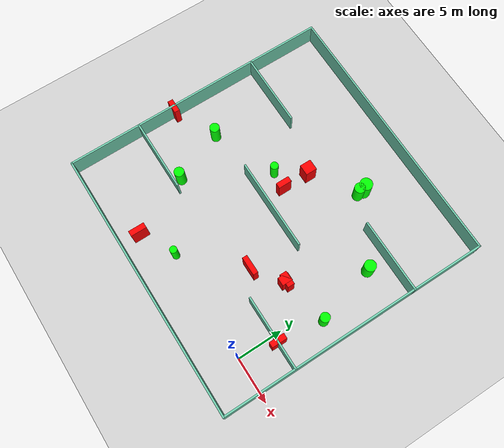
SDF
<sdf version="1.7">
 <world name="default">
  <light name="sun" type="directional">
   <pose>0 0 10 0 -0 0</pose>
   <diffuse>0.8 0.8 0.8 1</diffuse>
   <specular>0.2 0.2 0.2 1</specular>
   <attenuation>
    <range>1000</range>
    <constant>0.9</constant>
    <linear>0.01</linear>
    <quadratic>0.001</quadratic>
   </attenuation>
   <direction>-0.5 0.1 -0.9</direction>
   <spot><inner_angle>0</inner_angle><outer_angle>0</outer_angle><falloff>0</falloff></spot>
  </light>
  <model name="ground_plane">
   <static>1</static>
   <link name="link">
    <collision name="collision">
     <geometry><plane><normal>0 0 1</normal><size>100 100</size></plane></geometry>
     <surface>
      <contact><collide_bitmask>65535</collide_bitmask></contact>
      <friction><ode><mu>100</mu><mu2>50</mu2></ode></friction>
     </surface>
    </collision>
    <visual name="visual">
     <cast_shadows>0</cast_shadows>
     <geometry><plane><normal>0 0 1</normal><size>100 100</size></plane></geometry>
     <material>
      <script><uri>file://media/materials/scripts/gazebo.material</uri><name>Gazebo/Grey</name></script>
     </material>
    </visual>
   </link>
  </model>
  <gravity>0 0 -9.8</gravity>
  <magnetic_field>6e-06 2.3e-05 -4.2e-05</magnetic_field>
  <atmosphere type="adiabatic"/>
  <physics type="ode">
   <max_step_size>0.001</max_step_size>
   <real_time_factor>1</real_time_factor>
   <real_time_update_rate>1000</real_time_update_rate>
  </physics>
  <scene><ambient>0.4 0.4 0.4 1</ambient><background>0.7 0.7 0.7 1</background><shadows>1</shadows></scene>
  <spherical_coordinates>
   <surface_model>EARTH_WGS84</surface_model>
   <latitude_deg>0</latitude_deg>
   <longitude_deg>0</longitude_deg>
   <elevation>0</elevation>
   <heading_deg>0</heading_deg>
  </spherical_coordinates>
  <model name="my_base_walls">
   <link name="Wall_10">
    <collision name="Wall_10_Collision">
     <geometry><box><size>8.2 0.2 2.5</size></box></geometry>
     <pose>0 0 1.25 0 -0 0</pose>
    </collision>
    <visual name="Wall_10_Visual">
     <pose>0 0 1.25 0 -0 0</pose>
     <geometry><box><size>8.2 0.2 2.5</size></box></geometry>
     <material>
      <script><uri>file://media/materials/scripts/gazebo.material</uri><name>Gazebo/Grey</name></script>
      <ambient>0.435294 0.796078 0.67451 1</ambient>
     </material>
     <meta><layer>0</layer></meta>
    </visual>
    <pose>-11 -7 0 0 -0 0</pose>
   </link>
   <link name="Wall_12">
    <collision name="Wall_12_Collision">
     <geometry><box><size>8.2 0.2 2.5</size></box></geometry>
     <pose>0 0 1.25 0 -0 0</pose>
    </collision>
    <visual name="Wall_12_Visual">
     <pose>0 0 1.25 0 -0 0</pose>
     <geometry><box><size>8.2 0.2 2.5</size></box></geometry>
     <material>
      <script><uri>file://media/materials/scripts/gazebo.material</uri><name>Gazebo/Grey</name></script>
      <ambient>0.435294 0.796078 0.67451 1</ambient>
     </material>
     <meta><layer>0</layer></meta>
    </visual>
    <pose>-11 7 0 0 -0 0</pose>
   </link>
   <link name="Wall_14">
    <collision name="Wall_14_Collision">
     <geometry><box><size>8.2 0.2 2.5</size></box></geometry>
     <pose>0 0 1.25 0 -0 0</pose>
    </collision>
    <visual name="Wall_14_Visual">
     <pose>0 0 1.25 0 -0 0</pose>
     <geometry><box><size>8.2 0.2 2.5</size></box></geometry>
     <material>
      <script><uri>file://media/materials/scripts/gazebo.material</uri><name>Gazebo/Grey</name></script>
      <ambient>0.435294 0.796078 0.67451 1</ambient>
     </material>
     <meta><layer>0</layer></meta>
    </visual>
    <pose>11 7 0 0 -0 3.14159</pose>
   </link>
   <link name="Wall_16">
    <collision name="Wall_16_Collision">
     <geometry><box><size>10.2 0.2 2.5</size></box></geometry>
     <pose>0 0 1.25 0 -0 0</pose>
    </collision>
    <visual name="Wall_16_Visual">
     <pose>0 0 1.25 0 -0 0</pose>
     <geometry><box><size>10.2 0.2 2.5</size></box></geometry>
     <material>
      <script><uri>file://media/materials/scripts/gazebo.material</uri><name>Gazebo/Grey</name></script>
      <ambient>0.435294 0.796078 0.67451 1</ambient>
     </material>
     <meta><layer>0</layer></meta>
    </visual>
    <pose>0 0 0 0 -0 3.14159</pose>
   </link>
   <link name="Wall_2">
    <collision name="Wall_2_Collision">
     <geometry><box><size>30.2 0.2 2.5</size></box></geometry>
     <pose>0 0 1.25 0 -0 0</pose>
    </collision>
    <visual name="Wall_2_Visual">
     <pose>0 0 1.25 0 -0 0</pose>
     <geometry><box><size>30.2 0.2 2.5</size></box></geometry>
     <material>
      <script><uri>file://media/materials/scripts/gazebo.material</uri><name>Gazebo/Grey</name></script>
      <ambient>0.435294 0.796078 0.67451 1</ambient>
     </material>
     <meta><layer>0</layer></meta>
    </visual>
    <pose>0 -15 0 0 -0 3.14159</pose>
   </link>
   <link name="Wall_3">
    <collision name="Wall_3_Collision">
     <geometry><box><size>30.2 0.2 2.5</size></box></geometry>
     <pose>0 0 1.25 0 -0 0</pose>
    </collision>
    <visual name="Wall_3_Visual">
     <pose>0 0 1.25 0 -0 0</pose>
     <geometry><box><size>30.2 0.2 2.5</size></box></geometry>
     <material>
      <script><uri>file://media/materials/scripts/gazebo.material</uri><name>Gazebo/Grey</name></script>
      <ambient>0.435294 0.796078 0.67451 1</ambient>
     </material>
     <meta><layer>0</layer></meta>
    </visual>
    <pose>-15 0 0 0 -0 1.5708</pose>
   </link>
   <link name="Wall_4">
    <collision name="Wall_4_Collision">
     <geometry><box><size>30.2 0.2 2.5</size></box></geometry>
     <pose>0 0 1.25 0 -0 0</pose>
    </collision>
    <visual name="Wall_4_Visual">
     <pose>0 0 1.25 0 -0 0</pose>
     <geometry><box><size>30.2 0.2 2.5</size></box></geometry>
     <material>
      <script><uri>file://media/materials/scripts/gazebo.material</uri><name>Gazebo/Grey</name></script>
      <ambient>0.435294 0.796078 0.67451 1</ambient>
     </material>
     <meta><layer>0</layer></meta>
    </visual>
    <pose>0 15 0 0 -0 0</pose>
   </link>
   <link name="Wall_6">
    <collision name="Wall_6_Collision">
     <geometry><box><size>30.2 0.2 2.5</size></box></geometry>
     <pose>0 0 1.25 0 -0 0</pose>
    </collision>
    <visual name="Wall_6_Visual">
     <pose>0 0 1.25 0 -0 0</pose>
     <geometry><box><size>30.2 0.2 2.5</size></box></geometry>
     <material>
      <script><uri>file://media/materials/scripts/gazebo.material</uri><name>Gazebo/Grey</name></script>
      <ambient>0.435294 0.796078 0.67451 1</ambient>
     </material>
     <meta><layer>0</layer></meta>
    </visual>
    <pose>15 0 0 0 -0 1.5708</pose>
   </link>
   <link name="Wall_8">
    <collision name="Wall_8_Collision">
     <geometry><box><size>8.2 0.2 2.5</size></box></geometry>
     <pose>0 0 1.25 0 -0 0</pose>
    </collision>
    <visual name="Wall_8_Visual">
     <pose>0 0 1.25 0 -0 0</pose>
     <geometry><box><size>8.2 0.2 2.5</size></box></geometry>
     <material>
      <script><uri>file://media/materials/scripts/gazebo.material</uri><name>Gazebo/Grey</name></script>
      <ambient>0.435294 0.796078 0.67451 1</ambient>
     </material>
     <meta><layer>0</layer></meta>
    </visual>
    <pose>11 -7 0 0 -0 3.14159</pose>
   </link>
   <static>1</static>
   <pose>-11 11 0 0 -0 0</pose>
  </model>
  <model name="cylinder1">
   <static>1</static>
   <link name="link">
    <inertial>
     <mass>1</mass>
     <inertia><ixx>0.5</ixx><ixy>0</ixy><ixz>0</ixz><iyy>0.5</iyy><iyz>0</iyz><izz>1</izz></inertia>
    </inertial>
    <collision name="collision">
     <geometry><cylinder><radius>0.6307962449873595</radius><length>2.5</length></cylinder></geometry>
    </collision>
    <visual name="visual">
     <geometry><cylinder><radius>0.6307962449873595</radius><length>2.5</length></cylinder></geometry>
     <material>
      <ambient>0 1 0 1</ambient>
      <diffuse>0 1 0 1</diffuse>
      <specular>0.1 0.1 0.1 1</specular>
      <emissive>0 0 0 0</emissive>
     </material>
    </visual>
   </link>
   <pose>-0.2795666545069899 15.689860508418917 1.25 0 0 0</pose>
  </model>
  <model name="cylinder2">
   <static>1</static>
   <link name="link">
    <inertial>
     <mass>1</mass>
     <inertia><ixx>0.5</ixx><ixy>0</ixy><ixz>0</ixz><iyy>0.5</iyy><iyz>0</iyz><izz>1</izz></inertia>
    </inertial>
    <collision name="collision">
     <geometry><cylinder><radius>0.42486859493810575</radius><length>2.5</length></cylinder></geometry>
    </collision>
    <visual name="visual">
     <geometry><cylinder><radius>0.42486859493810575</radius><length>2.5</length></cylinder></geometry>
     <material>
      <ambient>0 1 0 1</ambient>
      <diffuse>0 1 0 1</diffuse>
      <specular>0.1 0.1 0.1 1</specular>
      <emissive>0 0 0 0</emissive>
     </material>
    </visual>
   </link>
   <pose>-14.349908849653117 13.527104892940773 1.25 0 0 0</pose>
  </model>
  <model name="cylinder3">
   <static>1</static>
   <link name="link">
    <inertial>
     <mass>1</mass>
     <inertia><ixx>0.5</ixx><ixy>0</ixy><ixz>0</ixz><iyy>0.5</iyy><iyz>0</iyz><izz>1</izz></inertia>
    </inertial>
    <collision name="collision">
     <geometry><cylinder><radius>0.6945612942952584</radius><length>2.5</length></cylinder></geometry>
    </collision>
    <visual name="visual">
     <geometry><cylinder><radius>0.6945612942952584</radius><length>2.5</length></cylinder></geometry>
     <material>
      <ambient>0 1 0 1</ambient>
      <diffuse>0 1 0 1</diffuse>
      <specular>0.1 0.1 0.1 1</specular>
      <emissive>0 0 0 0</emissive>
     </material>
    </visual>
   </link>
   <pose>-7.497953665345452 20.33407282057919 1.25 0 0 0</pose>
  </model>
  <model name="cylinder4">
   <static>1</static>
   <link name="link">
    <inertial>
     <mass>1</mass>
     <inertia><ixx>0.5</ixx><ixy>0</ixy><ixz>0</ixz><iyy>0.5</iyy><iyz>0</iyz><izz>1</izz></inertia>
    </inertial>
    <collision name="collision">
     <geometry><cylinder><radius>0.53246487797308</radius><length>2.5</length></cylinder></geometry>
    </collision>
    <visual name="visual">
     <geometry><cylinder><radius>0.53246487797308</radius><length>2.5</length></cylinder></geometry>
     <material>
      <ambient>0 1 0 1</ambient>
      <diffuse>0 1 0 1</diffuse>
      <specular>0.1 0.1 0.1 1</specular>
      <emissive>0 0 0 0</emissive>
     </material>
    </visual>
   </link>
   <pose>-21.415871497687498 10.567794295885346 1.25 0 0 0</pose>
  </model>
  <model name="cylinder5">
   <static>1</static>
   <link name="link">
    <inertial>
     <mass>1</mass>
     <inertia><ixx>0.5</ixx><ixy>0</ixy><ixz>0</ixz><iyy>0.5</iyy><iyz>0</iyz><izz>1</izz></inertia>
    </inertial>
    <collision name="collision">
     <geometry><cylinder><radius>0.5449095314704763</radius><length>2.5</length></cylinder></geometry>
    </collision>
    <visual name="visual">
     <geometry><cylinder><radius>0.5449095314704763</radius><length>2.5</length></cylinder></geometry>
     <material>
      <ambient>0 1 0 1</ambient>
      <diffuse>0 1 0 1</diffuse>
      <specular>0.1 0.1 0.1 1</specular>
      <emissive>0 0 0 0</emissive>
     </material>
    </visual>
   </link>
   <pose>-19.130167697950824 4.875595749983599 1.25 0 0 0</pose>
  </model>
  <model name="cylinder6">
   <static>1</static>
   <link name="link">
    <inertial>
     <mass>1</mass>
     <inertia><ixx>0.5</ixx><ixy>0</ixy><ixz>0</ixz><iyy>0.5</iyy><iyz>0</iyz><izz>1</izz></inertia>
    </inertial>
    <collision name="collision">
     <geometry><cylinder><radius>0.39052225544250535</radius><length>2.5</length></cylinder></geometry>
    </collision>
    <visual name="visual">
     <geometry><cylinder><radius>0.39052225544250535</radius><length>2.5</length></cylinder></geometry>
     <material>
      <ambient>0 1 0 1</ambient>
      <diffuse>0 1 0 1</diffuse>
      <specular>0.1 0.1 0.1 1</specular>
      <emissive>0 0 0 0</emissive>
     </material>
    </visual>
   </link>
   <pose>-12.2845472063273 0.18483672919666594 1.25 0 0 0</pose>
  </model>
  <model name="cylinder7">
   <static>1</static>
   <link name="link">
    <inertial>
     <mass>1</mass>
     <inertia><ixx>0.5</ixx><ixy>0</ixy><ixz>0</ixz><iyy>0.5</iyy><iyz>0</iyz><izz>1</izz></inertia>
    </inertial>
    <collision name="collision">
     <geometry><cylinder><radius>0.5783427441170936</radius><length>2.5</length></cylinder></geometry>
    </collision>
    <visual name="visual">
     <geometry><cylinder><radius>0.5783427441170936</radius><length>2.5</length></cylinder></geometry>
     <material>
      <ambient>0 1 0 1</ambient>
      <diffuse>0 1 0 1</diffuse>
      <specular>0.1 0.1 0.1 1</specular>
      <emissive>0 0 0 0</emissive>
     </material>
    </visual>
   </link>
   <pose>-7.505478410985871 19.56374126416251 1.25 0 0 0</pose>
  </model>
  <model name="cylinder8">
   <static>1</static>
   <link name="link">
    <inertial>
     <mass>1</mass>
     <inertia><ixx>0.5</ixx><ixy>0</ixy><ixz>0</ixz><iyy>0.5</iyy><iyz>0</iyz><izz>1</izz></inertia>
    </inertial>
    <collision name="collision">
     <geometry><cylinder><radius>0.5214481239899752</radius><length>2.5</length></cylinder></geometry>
    </collision>
    <visual name="visual">
     <geometry><cylinder><radius>0.5214481239899752</radius><length>2.5</length></cylinder></geometry>
     <material>
      <ambient>0 1 0 1</ambient>
      <diffuse>0 1 0 1</diffuse>
      <specular>0.1 0.1 0.1 1</specular>
      <emissive>0 0 0 0</emissive>
     </material>
    </visual>
   </link>
   <pose>1.5112688937204837 9.066980308182579 1.25 0 0 0</pose>
  </model>
  <model name="box1">
   <static>1</static>
   <link name="link">
    <inertial>
     <mass>1</mass>
     <inertia><ixx>0.083</ixx><ixy>0</ixy><ixz>0</ixz><iyy>0.083</iyy><iyz>0</iyz><izz>0.083</izz></inertia>
    </inertial>
    <collision name="collision">
     <geometry><box><size>0.6047199822364064 1.676999834457076 2.5</size></box></geometry>
    </collision>
    <visual name="visual">
     <geometry><box><size>0.6047199822364064 1.676999834457076 2.5</size></box></geometry>
     <material>
      <ambient>1 0 0 1</ambient>
      <diffuse>1 0 0 1</diffuse>
      <specular>0.1 0.1 0.1 1</specular>
      <emissive>0 0 0 0</emissive>
     </material>
    </visual>
    <sensor name="my_contact" type="contact">
     <contact><collision>box_collision</collision><topic>__default_topic__</topic></contact>
    </sensor>
   </link>
   <pose>0.8842487395066136 4.056505303693732 1.25 0 0 0</pose>
  </model>
  <model name="box2">
   <static>1</static>
   <link name="link">
    <inertial>
     <mass>1</mass>
     <inertia><ixx>0.083</ixx><ixy>0</ixy><ixz>0</ixz><iyy>0.083</iyy><iyz>0</iyz><izz>0.083</izz></inertia>
    </inertial>
    <collision name="collision">
     <geometry><box><size>1.5035423176928273 0.7490071152722453 2.5</size></box></geometry>
    </collision>
    <visual name="visual">
     <geometry><box><size>1.5035423176928273 0.7490071152722453 2.5</size></box></geometry>
     <material>
      <ambient>1 0 0 1</ambient>
      <diffuse>1 0 0 1</diffuse>
      <specular>0.1 0.1 0.1 1</specular>
      <emissive>0 0 0 0</emissive>
     </material>
    </visual>
    <sensor name="my_contact" type="contact">
     <contact><collision>box_collision</collision><topic>__default_topic__</topic></contact>
    </sensor>
   </link>
   <pose>-3.6083474279812116 8.039935172331429 1.25 0 0 0</pose>
  </model>
  <model name="box3">
   <static>1</static>
   <link name="link">
    <inertial>
     <mass>1</mass>
     <inertia><ixx>0.083</ixx><ixy>0</ixy><ixz>0</ixz><iyy>0.083</iyy><iyz>0</iyz><izz>0.083</izz></inertia>
    </inertial>
    <collision name="collision">
     <geometry><box><size>1.1968049777502543 1.241581880311651 2.5</size></box></geometry>
    </collision>
    <visual name="visual">
     <geometry><box><size>1.1968049777502543 1.241581880311651 2.5</size></box></geometry>
     <material>
      <ambient>1 0 0 1</ambient>
      <diffuse>1 0 0 1</diffuse>
      <specular>0.1 0.1 0.1 1</specular>
      <emissive>0 0 0 0</emissive>
     </material>
    </visual>
    <sensor name="my_contact" type="contact">
     <contact><collision>box_collision</collision><topic>__default_topic__</topic></contact>
    </sensor>
   </link>
   <pose>-12.272938455529074 16.376841675525576 1.25 0 0 0</pose>
  </model>
  <model name="box4">
   <static>1</static>
   <link name="link">
    <inertial>
     <mass>1</mass>
     <inertia><ixx>0.083</ixx><ixy>0</ixy><ixz>0</ixz><iyy>0.083</iyy><iyz>0</iyz><izz>0.083</izz></inertia>
    </inertial>
    <collision name="collision">
     <geometry><box><size>1.4847889134585055 0.5881454836198331 2.5</size></box></geometry>
    </collision>
    <visual name="visual">
     <geometry><box><size>1.4847889134585055 0.5881454836198331 2.5</size></box></geometry>
     <material>
      <ambient>1 0 0 1</ambient>
      <diffuse>1 0 0 1</diffuse>
      <specular>0.1 0.1 0.1 1</specular>
      <emissive>0 0 0 0</emissive>
     </material>
    </visual>
    <sensor name="my_contact" type="contact">
     <contact><collision>box_collision</collision><topic>__default_topic__</topic></contact>
    </sensor>
   </link>
   <pose>-25.957916941486456 8.21978787454276 1.25 0 0 0</pose>
  </model>
  <model name="box5">
   <static>1</static>
   <link name="link">
    <inertial>
     <mass>1</mass>
     <inertia><ixx>0.083</ixx><ixy>0</ixy><ixz>0</ixz><iyy>0.083</iyy><iyz>0</iyz><izz>0.083</izz></inertia>
    </inertial>
    <collision name="collision">
     <geometry><box><size>0.9068499414349036 1.1416175898569554 2.5</size></box></geometry>
    </collision>
    <visual name="visual">
     <geometry><box><size>0.9068499414349036 1.1416175898569554 2.5</size></box></geometry>
     <material>
      <ambient>1 0 0 1</ambient>
      <diffuse>1 0 0 1</diffuse>
      <specular>0.1 0.1 0.1 1</specular>
      <emissive>0 0 0 0</emissive>
     </material>
    </visual>
    <sensor name="my_contact" type="contact">
     <contact><collision>box_collision</collision><topic>__default_topic__</topic></contact>
    </sensor>
   </link>
   <pose>-3.7411371593186793 7.901279197775599 1.25 0 0 0</pose>
  </model>
  <model name="box6">
   <static>1</static>
   <link name="link">
    <inertial>
     <mass>1</mass>
     <inertia><ixx>0.083</ixx><ixy>0</ixy><ixz>0</ixz><iyy>0.083</iyy><iyz>0</iyz><izz>0.083</izz></inertia>
    </inertial>
    <collision name="collision">
     <geometry><box><size>0.6161419377452875 1.4809586900444496 2.5</size></box></geometry>
    </collision>
    <visual name="visual">
     <geometry><box><size>0.6161419377452875 1.4809586900444496 2.5</size></box></geometry>
     <material>
      <ambient>1 0 0 1</ambient>
      <diffuse>1 0 0 1</diffuse>
      <specular>0.1 0.1 0.1 1</specular>
      <emissive>0 0 0 0</emissive>
     </material>
    </visual>
    <sensor name="my_contact" type="contact">
     <contact><collision>box_collision</collision><topic>__default_topic__</topic></contact>
    </sensor>
   </link>
   <pose>-12.270719267413327 13.329475438174285 1.25 0 0 0</pose>
  </model>
  <model name="box7">
   <static>1</static>
   <link name="link">
    <inertial>
     <mass>1</mass>
     <inertia><ixx>0.083</ixx><ixy>0</ixy><ixz>0</ixz><iyy>0.083</iyy><iyz>0</iyz><izz>0.083</izz></inertia>
    </inertial>
    <collision name="collision">
     <geometry><box><size>2.063154028529193 0.5579444493268323 2.5</size></box></geometry>
    </collision>
    <visual name="visual">
     <geometry><box><size>2.063154028529193 0.5579444493268323 2.5</size></box></geometry>
     <material>
      <ambient>1 0 0 1</ambient>
      <diffuse>1 0 0 1</diffuse>
      <specular>0.1 0.1 0.1 1</specular>
      <emissive>0 0 0 0</emissive>
     </material>
    </visual>
    <sensor name="my_contact" type="contact">
     <contact><collision>box_collision</collision><topic>__default_topic__</topic></contact>
    </sensor>
   </link>
   <pose>-6.785337232562071 5.760102438091877 1.25 0 0 0</pose>
  </model>
  <model name="box8">
   <static>1</static>
   <link name="link">
    <inertial>
     <mass>1</mass>
     <inertia><ixx>0.083</ixx><ixy>0</ixy><ixz>0</ixz><iyy>0.083</iyy><iyz>0</iyz><izz>0.083</izz></inertia>
    </inertial>
    <collision name="collision">
     <geometry><box><size>0.6113318805105813 1.7441466780639312 2.5</size></box></geometry>
    </collision>
    <visual name="visual">
     <geometry><box><size>0.6113318805105813 1.7441466780639312 2.5</size></box></geometry>
     <material>
      <ambient>1 0 0 1</ambient>
      <diffuse>1 0 0 1</diffuse>
      <specular>0.1 0.1 0.1 1</specular>
      <emissive>0 0 0 0</emissive>
     </material>
    </visual>
    <sensor name="my_contact" type="contact">
     <contact><collision>box_collision</collision><topic>__default_topic__</topic></contact>
    </sensor>
   </link>
   <pose>-16.04071150799364 -1.7894890707170834 1.25 0 0 0</pose>
  </model>
 </world>
</sdf>
